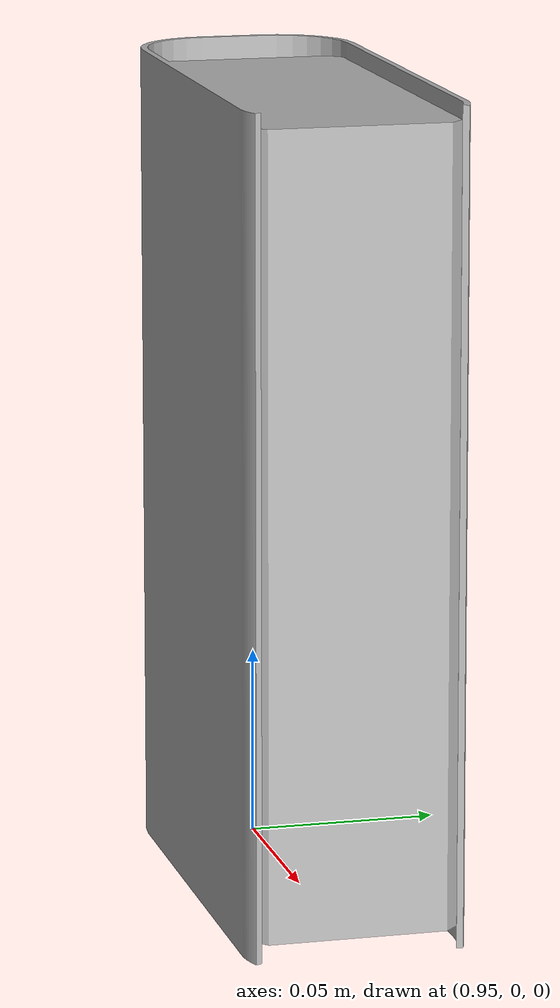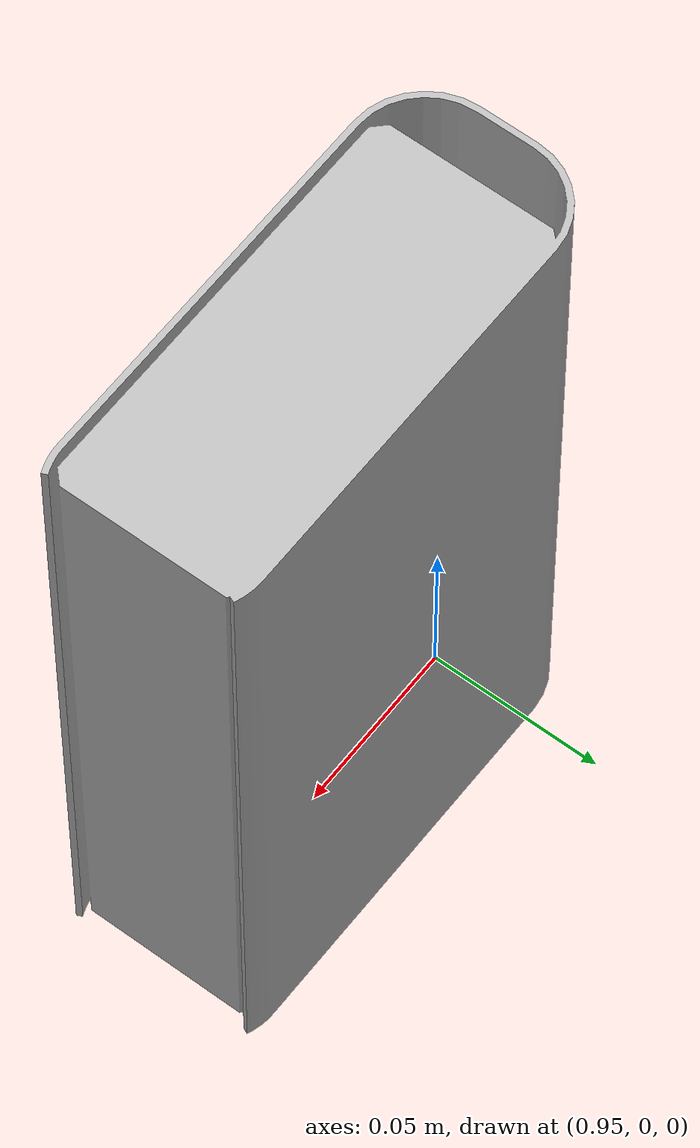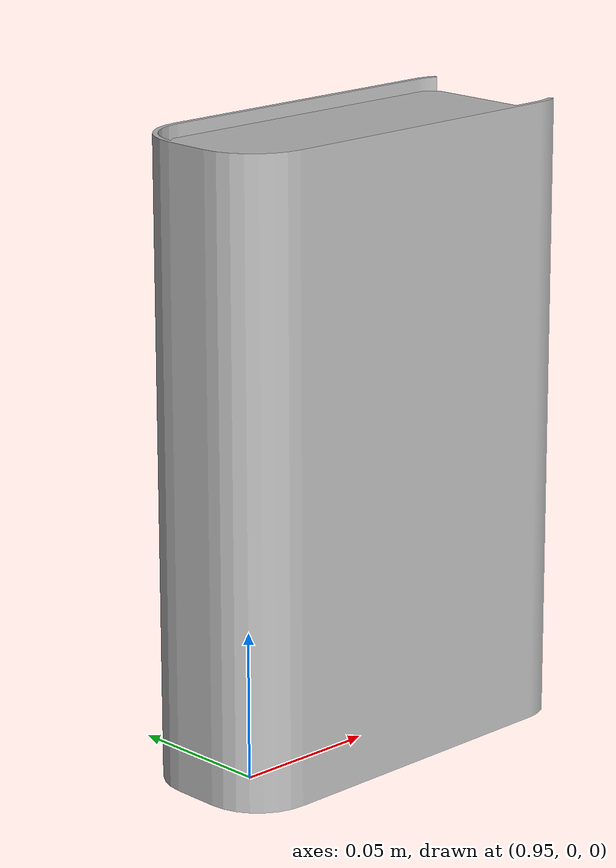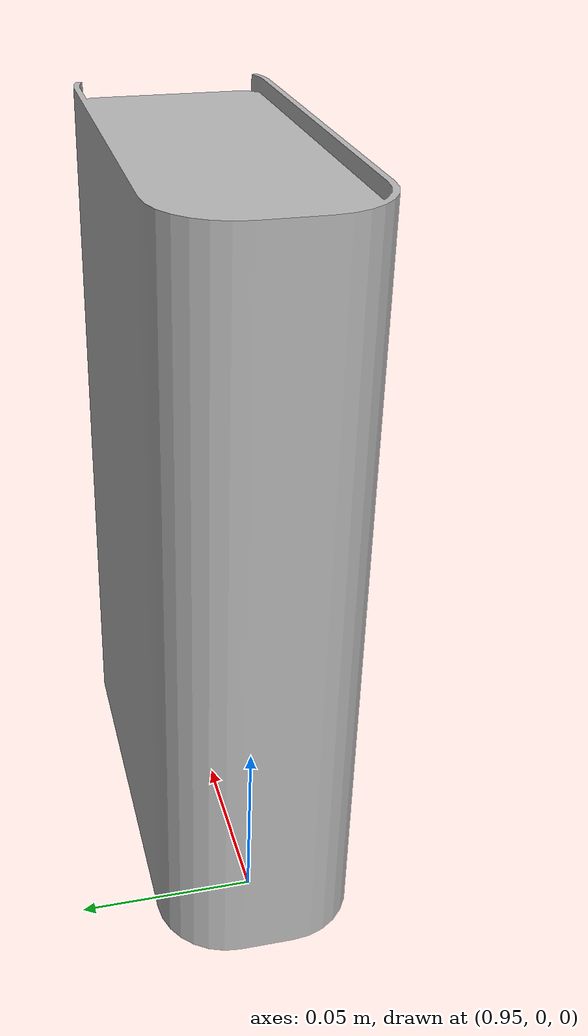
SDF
<?xml version="1.0" ?>
<sdf version="1.5">
  <model name="mpnet_book">
    <pose frame="world">1 0 0.0 0 0 0</pose>
    <static>true</static>
    <link name="link">
      <inertial>
        <mass>0.1</mass>
      </inertial>
      <visual name="visual">
        <geometry>
          <mesh>
            <uri>model://mpnet_book/meshes/Dictionary.STL</uri>
            <scale>0.0017 0.0017 0.0017</scale>
          </mesh>
        </geometry>
      </visual>
    </link>
  </model>
</sdf>
